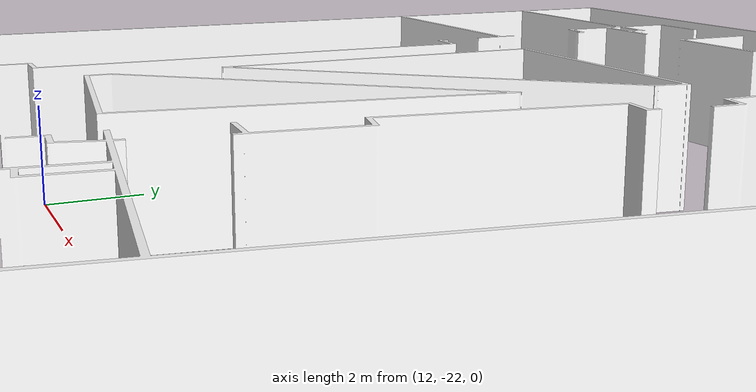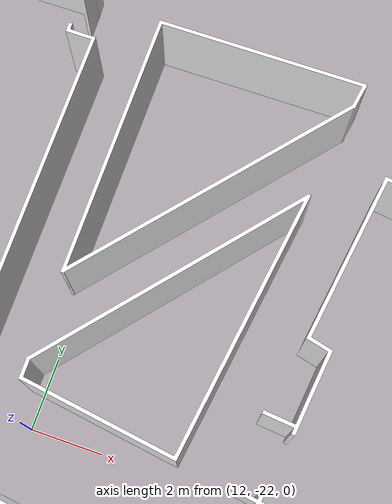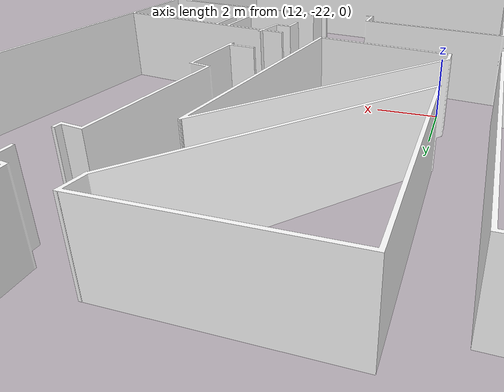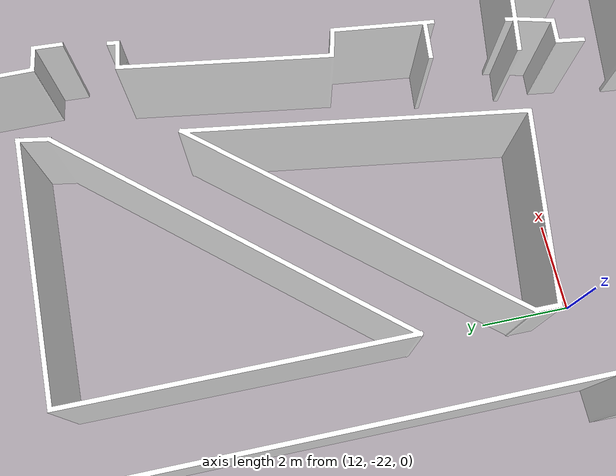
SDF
<?xml version='1.0' encoding='utf-8'?>
<sdf version="1.7">
  <model name="test_map_E2A_L1">
    <static>true</static>
    <link name="wall_1">
      <visual name="wall_1">
        <geometry>
          <mesh>
            <uri>model://test_map_E2A_L1/meshes/wall_1.obj</uri>
          </mesh>
        </geometry>
        <transparency>0.0</transparency>
        <material>
          <diffuse>1.0 1.0 1.0</diffuse>
          <specular>0.1 0.1 0.1</specular>
          <pbr>
            <metal>
              <metalness>0.0</metalness>
              <albedo_map>model://test_map_E2A_L1/meshes/default.png</albedo_map>
            </metal>
          </pbr>
          <script>
            <uri>model://test_map_E2A_L1/meshes/</uri>
            <name>wall_1_Diffuse</name>
          </script>
        </material>
      </visual>
      <collision name="collision">
        <geometry>
          <mesh>
            <uri>model://test_map_E2A_L1/meshes/wall_1.obj</uri>
          </mesh>
        </geometry>
        <surface>
          <contact>
            <collide_bitmask>0x01</collide_bitmask>
          </contact>
        </surface>
      </collision>
      <pose>3.59995916796716 -31.845481797859218 0 0 0 0</pose>
    </link>
    <link name="wall_2">
      <visual name="wall_2">
        <geometry>
          <mesh>
            <uri>model://test_map_E2A_L1/meshes/wall_2.obj</uri>
          </mesh>
        </geometry>
        <transparency>0.0</transparency>
        <material>
          <diffuse>1.0 1.0 1.0</diffuse>
          <specular>0.1 0.1 0.1</specular>
          <pbr>
            <metal>
              <metalness>0.0</metalness>
              <albedo_map>model://test_map_E2A_L1/meshes/default.png</albedo_map>
            </metal>
          </pbr>
          <script>
            <uri>model://test_map_E2A_L1/meshes/</uri>
            <name>wall_2_Diffuse</name>
          </script>
        </material>
      </visual>
      <collision name="collision">
        <geometry>
          <mesh>
            <uri>model://test_map_E2A_L1/meshes/wall_2.obj</uri>
          </mesh>
        </geometry>
        <surface>
          <contact>
            <collide_bitmask>0x01</collide_bitmask>
          </contact>
        </surface>
      </collision>
      <pose>11.649383889403657 -21.668722334704658 0 0 0 0</pose>
    </link>
  </model>
</sdf>
